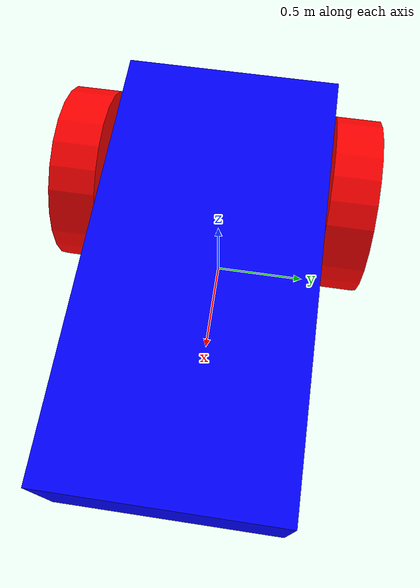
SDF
<?xml version="1.0" ?>
<sdf version="1.8">
    <model name='my_robot' canonical_link='chassis'>
        <pose>0 0 0.5 0 0 0</pose>

        <link name='chassis'>
            <pose relative_to='__model__'>0.5 0 0.4 0 0 0</pose>
            <inertial>
                <mass>1.14395</mass>
                <inertia>
                    <ixx>0.126164</ixx><ixy>0</ixy><ixz>0</ixz>
                    <iyy>0.416519</iyy><iyz>0</iyz><izz>0.481014</izz>
                </inertia>
            </inertial>
            <visual name='visual'>
                <geometry><box><size>2.0 1.0 0.5</size></box></geometry>
                <material>
                    <ambient>0.0 0.0 1.0 1</ambient>
                    <diffuse>0.0 0.0 1.0 1</diffuse>
                    <specular>0.0 0.0 1.0 1</specular>
                </material>
            </visual>
            <collision name='collision'>
                <geometry><box><size>2.0 1.0 0.5</size></box></geometry>
            </collision>
        </link>

        <link name='left_wheel'>
            <pose relative_to="chassis">-0.5 0.6 0 -1.5707 0 0</pose>
            <inertial>
                <mass>2</mass>
                <inertia>
                    <ixx>0.145833</ixx><ixy>0</ixy><ixz>0</ixz>
                    <iyy>0.145833</iyy><iyz>0</iyz><izz>0.125</izz>
                </inertia>
            </inertial>
            <visual name='visual'>
                <geometry><cylinder><radius>0.4</radius><length>0.2</length></cylinder></geometry>
                <material><ambient>1 0 0 1</ambient><diffuse>1 0 0 1</diffuse></material>
            </visual>
            <collision name='collision'>
                <geometry><cylinder><radius>0.4</radius><length>0.2</length></cylinder></geometry>
            </collision>
        </link>

        <link name='right_wheel'>
            <pose relative_to="chassis">-0.5 -0.6 0 -1.5707 0 0</pose>
            <inertial>
                <mass>2</mass>
                <inertia>
                    <ixx>0.145833</ixx><ixy>0</ixy><ixz>0</ixz>
                    <iyy>0.145833</iyy><iyz>0</iyz><izz>0.125</izz>
                </inertia>
            </inertial>
            <visual name='visual'>
                <geometry><cylinder><radius>0.4</radius><length>0.2</length></cylinder></geometry>
                <material><ambient>1 0 0 1</ambient><diffuse>1 0 0 1</diffuse></material>
            </visual>
            <collision name='collision'>
                <geometry><cylinder><radius>0.4</radius><length>0.2</length></cylinder></geometry>
            </collision>
        </link>

        <link name='caster'>
            <pose relative_to='chassis'>0.8 0 -0.2 0 0 0</pose>
            <inertial>
                <mass>1</mass>
                <inertia>
                    <ixx>0.1</ixx><ixy>0</ixy><ixz>0</ixz>
                    <iyy>0.1</iyy><iyz>0</iyz><izz>0.1</izz>
                </inertia>
            </inertial>
            <visual name='visual'>
                <geometry><sphere><radius>0.2</radius></sphere></geometry>
                <material><ambient>0 1 0 1</ambient><diffuse>0 1 0 1</diffuse></material>
            </visual>
            <collision name='collision'>
                <geometry><sphere><radius>0.2</radius></sphere></geometry>
            </collision>
        </link>

        <joint name='left_wheel_joint' type='revolute'>
            <parent>chassis</parent>
            <child>left_wheel</child>
            <axis>
                <xyz expressed_in='__model__'>0 1 0</xyz>
                <limit><lower>-1.79e+308</lower><upper>1.79e+308</upper></limit>
            </axis>
        </joint>

        <joint name='right_wheel_joint' type='revolute'>
            <parent>chassis</parent>
            <child>right_wheel</child>
            <axis>
                <xyz expressed_in='__model__'>0 1 0</xyz>
                <limit><lower>-1.79e+308</lower><upper>1.79e+308</upper></limit>
            </axis>
        </joint>

        <joint name='caster_wheel' type='ball'>
            <parent>chassis</parent>
            <child>caster</child>
        </joint>

        <plugin filename="gz-sim-diff-drive-system" name="gz::sim::systems::DiffDrive">
            <left_joint>left_wheel_joint</left_joint>
            <right_joint>right_wheel_joint</right_joint>
            <wheel_separation>1.2</wheel_separation>
            <wheel_radius>0.4</wheel_radius>
            <odom_publish_frequency>30</odom_publish_frequency>
            <topic>cmd_vel</topic>
        </plugin>

        <plugin filename="gz-sim-joint-state-publisher-system" name="gz::sim::systems::JointStatePublisher"/>
    </model>
</sdf>
